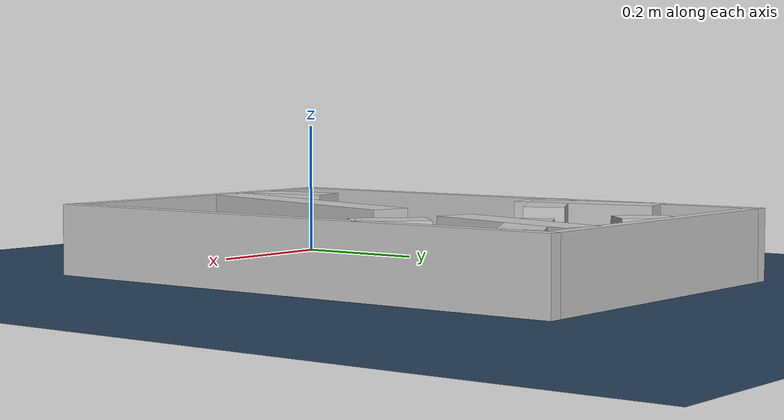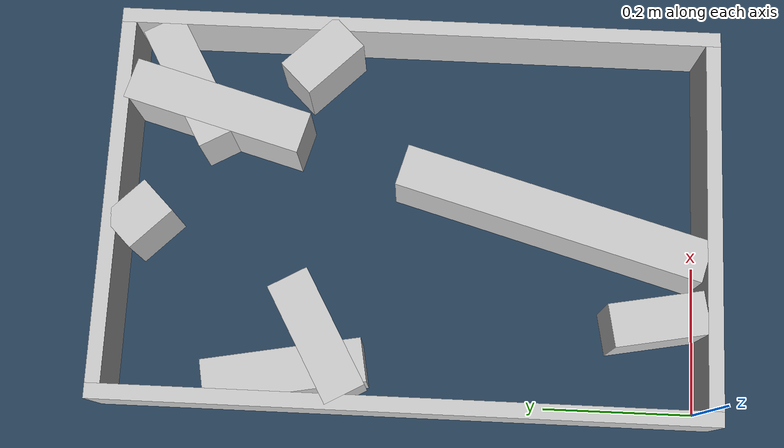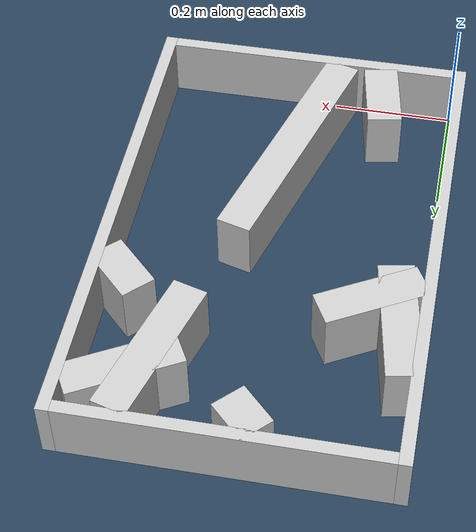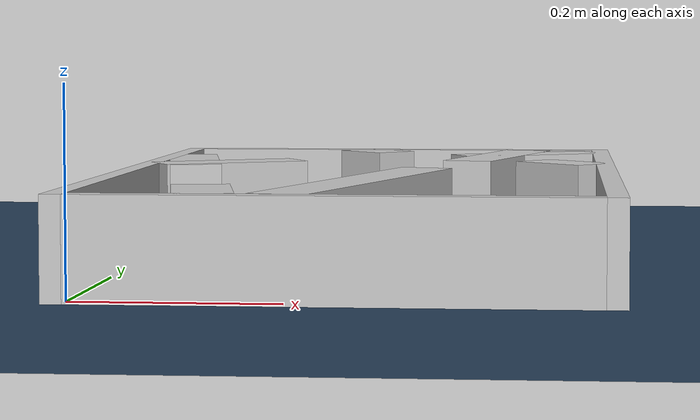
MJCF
<?xml version="1.0" ?>
<mujoco model="generated_real_template">
  <compiler angle="degree"/>
  <option timestep="0.002" integrator="implicitfast" iterations="100" cone="elliptic"/>
  <default>
    <geom density="1"/>
  </default>
  <asset>
    <texture builtin="gradient" height="3072" rgb1="0.3 0.5 0.7" rgb2="0 0 0" type="skybox" width="512"/>
    <texture builtin="checker" height="300" mark="edge" markrgb="0.8 0.8 0.8" name="groundplane" rgb1="0.2 0.3 0.4" rgb2="0.1 0.2 0.3" type="2d" width="300"/>
    <material name="groundplane" reflectance="0.2" texrepeat="5 5" texture="groundplane" texuniform="true"/>
  </asset>
  <worldbody>
    <light dir="0 0 -1" directional="true" pos="0 0 1.5"/>
    <geom name="floor" type="plane" condim="4" friction="0.5 0.005 0.001" material="groundplane" size="0 0 0.05"/>
    <body name="walls">
      <geom name="wall_boundary_left" type="box" condim="4" friction="1.0 0.005 0.0001" rgba="0.8 0.8 0.8 1" pos="-0.010000 0.387500 0.050000" euler="0 0 0.000000" size="0.010000 0.407500 0.050000"/>
      <geom name="wall_boundary_right" type="box" condim="4" friction="1.0 0.005 0.0001" rgba="0.8 0.8 0.8 1" pos="0.500000 0.387500 0.050000" euler="0 0 0.000000" size="0.010000 0.407500 0.050000"/>
      <geom name="wall_boundary_bottom" type="box" condim="4" friction="1.0 0.005 0.0001" rgba="0.8 0.8 0.8 1" pos="0.245000 -0.010000 0.050000" euler="0 0 0.000000" size="0.245000 0.010000 0.050000"/>
      <geom name="wall_boundary_top" type="box" condim="4" friction="1.0 0.005 0.0001" rgba="0.8 0.8 0.8 1" pos="0.245000 0.785000 0.050000" euler="0 0 0.000000" size="0.245000 0.010000 0.050000"/>
      <geom name="wall_inner_1_1" type="box" condim="4" friction="1.0 0.005 0.0001" rgba="0.8 0.8 0.8 1" pos="0.249030 0.202145 0.050000" euler="0 0 74.258280" size="0.210022 0.028500 0.050000"/>
      <geom name="wall_inner_1_2" type="box" condim="4" friction="1.0 0.005 0.0001" rgba="0.8 0.8 0.8 1" pos="0.376990 0.656109 0.050000" euler="0 0 74.258280" size="0.123524 0.028500 0.050000"/>
      <geom name="wall_inner_2_1" type="box" condim="4" friction="1.0 0.005 0.0001" rgba="0.8 0.8 0.8 1" pos="0.114977 0.062174 0.050000" euler="0 0 100.375476" size="0.063208 0.028500 0.050000"/>
      <geom name="wall_inner_2_2" type="box" condim="4" friction="1.0 0.005 0.0001" rgba="0.8 0.8 0.8 1" pos="0.026803 0.543758 0.050000" euler="0 0 100.375476" size="0.104208 0.028500 0.050000"/>
      <geom name="wall_inner_3_1" type="box" condim="4" friction="1.0 0.005 0.0001" rgba="0.8 0.8 0.8 1" pos="0.223450 0.748896 0.050000" euler="0 0 -44.818042" size="0.036726 0.028500 0.050000"/>
      <geom name="wall_inner_3_2" type="box" condim="4" friction="1.0 0.005 0.0001" rgba="0.8 0.8 0.8 1" pos="0.454808 0.519002 0.050000" euler="0 0 -44.818042" size="0.049485 0.028500 0.050000"/>
      <geom name="wall_inner_4_1" type="box" condim="4" friction="1.0 0.005 0.0001" rgba="0.8 0.8 0.8 1" pos="0.073938 0.504775 0.050000" euler="0 0 29.356619" size="0.084831 0.028500 0.050000"/>
      <geom name="wall_inner_4_2" type="box" condim="4" friction="1.0 0.005 0.0001" rgba="0.8 0.8 0.8 1" pos="0.411264 0.694513 0.050000" euler="0 0 29.356619" size="0.090336 0.028500 0.050000"/>
    </body>
  </worldbody>
</mujoco>
